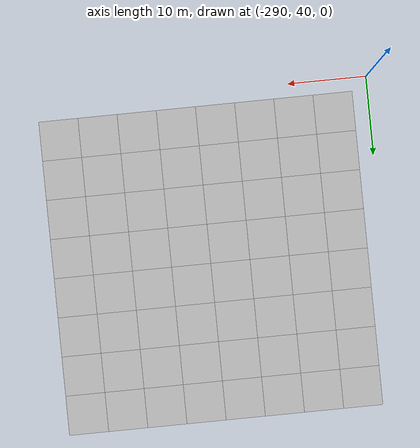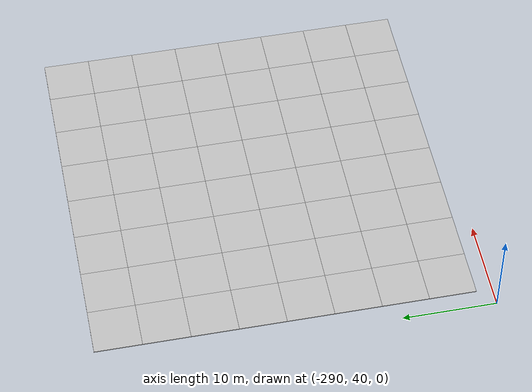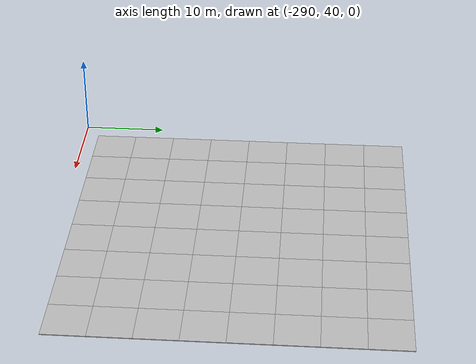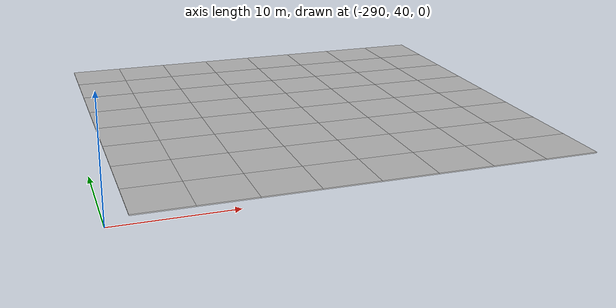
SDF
<sdf version="1.7">
 <world name="default">
  <model name="mud_plane_40x40_28">
   <model name="mud_plane_20x20">
    <model name="mud_plane">
     <static>1</static>
     <link name="link">
      <collision name="collision"><geometry><box><size>10 10 0.1</size></box></geometry></collision>
      <visual name="visual_1">
       <pose>-2.5 2.5 -0.05 0 -0 0</pose>
       <cast_shadows>0</cast_shadows>
       <geometry><box><size>5 5 0.1</size></box></geometry>
       <material>
        <script>
         <uri>model://mud_plane/materials/scripts</uri>
         <uri>model://mud_plane/materials/textures</uri>
         <name>vrc/mud</name>
        </script>
       </material>
      </visual>
      <visual name="visual_2">
       <pose>2.5 2.5 -0.05 0 -0 0</pose>
       <cast_shadows>0</cast_shadows>
       <geometry><box><size>5 5 0.1</size></box></geometry>
       <material>
        <script>
         <uri>model://mud_plane/materials/scripts</uri>
         <uri>model://mud_plane/materials/textures</uri>
         <name>vrc/mud</name>
        </script>
       </material>
      </visual>
      <visual name="visual_3">
       <pose>2.5 -2.5 -0.05 0 -0 0</pose>
       <cast_shadows>0</cast_shadows>
       <geometry><box><size>5 5 0.1</size></box></geometry>
       <material>
        <script>
         <uri>model://mud_plane/materials/scripts</uri>
         <uri>model://mud_plane/materials/textures</uri>
         <name>vrc/mud</name>
        </script>
       </material>
      </visual>
      <visual name="visual_4">
       <pose>-2.5 -2.5 -0.05 0 -0 0</pose>
       <cast_shadows>0</cast_shadows>
       <geometry><box><size>5 5 0.1</size></box></geometry>
       <material>
        <script>
         <uri>model://mud_plane/materials/scripts</uri>
         <uri>model://mud_plane/materials/textures</uri>
         <name>vrc/mud</name>
        </script>
       </material>
      </visual>
     </link>
     <pose>-4.99986 -4.99991 0 0 -0 0</pose>
    </model>
    <model name="mud_plane_0">
     <static>1</static>
     <link name="link">
      <collision name="collision"><geometry><box><size>10 10 0.1</size></box></geometry></collision>
      <visual name="visual_1">
       <pose>-2.5 2.5 -0.05 0 -0 0</pose>
       <cast_shadows>0</cast_shadows>
       <geometry><box><size>5 5 0.1</size></box></geometry>
       <material>
        <script>
         <uri>model://mud_plane/materials/scripts</uri>
         <uri>model://mud_plane/materials/textures</uri>
         <name>vrc/mud</name>
        </script>
       </material>
      </visual>
      <visual name="visual_2">
       <pose>2.5 2.5 -0.05 0 -0 0</pose>
       <cast_shadows>0</cast_shadows>
       <geometry><box><size>5 5 0.1</size></box></geometry>
       <material>
        <script>
         <uri>model://mud_plane/materials/scripts</uri>
         <uri>model://mud_plane/materials/textures</uri>
         <name>vrc/mud</name>
        </script>
       </material>
      </visual>
      <visual name="visual_3">
       <pose>2.5 -2.5 -0.05 0 -0 0</pose>
       <cast_shadows>0</cast_shadows>
       <geometry><box><size>5 5 0.1</size></box></geometry>
       <material>
        <script>
         <uri>model://mud_plane/materials/scripts</uri>
         <uri>model://mud_plane/materials/textures</uri>
         <name>vrc/mud</name>
        </script>
       </material>
      </visual>
      <visual name="visual_4">
       <pose>-2.5 -2.5 -0.05 0 -0 0</pose>
       <cast_shadows>0</cast_shadows>
       <geometry><box><size>5 5 0.1</size></box></geometry>
       <material>
        <script>
         <uri>model://mud_plane/materials/scripts</uri>
         <uri>model://mud_plane/materials/textures</uri>
         <name>vrc/mud</name>
        </script>
       </material>
      </visual>
     </link>
     <pose>-4.99946 4.99954 0 0 -0 0</pose>
    </model>
    <model name="mud_plane_1">
     <static>1</static>
     <link name="link">
      <collision name="collision"><geometry><box><size>10 10 0.1</size></box></geometry></collision>
      <visual name="visual_1">
       <pose>-2.5 2.5 -0.05 0 -0 0</pose>
       <cast_shadows>0</cast_shadows>
       <geometry><box><size>5 5 0.1</size></box></geometry>
       <material>
        <script>
         <uri>model://mud_plane/materials/scripts</uri>
         <uri>model://mud_plane/materials/textures</uri>
         <name>vrc/mud</name>
        </script>
       </material>
      </visual>
      <visual name="visual_2">
       <pose>2.5 2.5 -0.05 0 -0 0</pose>
       <cast_shadows>0</cast_shadows>
       <geometry><box><size>5 5 0.1</size></box></geometry>
       <material>
        <script>
         <uri>model://mud_plane/materials/scripts</uri>
         <uri>model://mud_plane/materials/textures</uri>
         <name>vrc/mud</name>
        </script>
       </material>
      </visual>
      <visual name="visual_3">
       <pose>2.5 -2.5 -0.05 0 -0 0</pose>
       <cast_shadows>0</cast_shadows>
       <geometry><box><size>5 5 0.1</size></box></geometry>
       <material>
        <script>
         <uri>model://mud_plane/materials/scripts</uri>
         <uri>model://mud_plane/materials/textures</uri>
         <name>vrc/mud</name>
        </script>
       </material>
      </visual>
      <visual name="visual_4">
       <pose>-2.5 -2.5 -0.05 0 -0 0</pose>
       <cast_shadows>0</cast_shadows>
       <geometry><box><size>5 5 0.1</size></box></geometry>
       <material>
        <script>
         <uri>model://mud_plane/materials/scripts</uri>
         <uri>model://mud_plane/materials/textures</uri>
         <name>vrc/mud</name>
        </script>
       </material>
      </visual>
     </link>
     <pose>4.99964 -4.99949 0 0 -0 0</pose>
    </model>
    <model name="mud_plane_2">
     <static>1</static>
     <link name="link">
      <collision name="collision"><geometry><box><size>10 10 0.1</size></box></geometry></collision>
      <visual name="visual_1">
       <pose>-2.5 2.5 -0.05 0 -0 0</pose>
       <cast_shadows>0</cast_shadows>
       <geometry><box><size>5 5 0.1</size></box></geometry>
       <material>
        <script>
         <uri>model://mud_plane/materials/scripts</uri>
         <uri>model://mud_plane/materials/textures</uri>
         <name>vrc/mud</name>
        </script>
       </material>
      </visual>
      <visual name="visual_2">
       <pose>2.5 2.5 -0.05 0 -0 0</pose>
       <cast_shadows>0</cast_shadows>
       <geometry><box><size>5 5 0.1</size></box></geometry>
       <material>
        <script>
         <uri>model://mud_plane/materials/scripts</uri>
         <uri>model://mud_plane/materials/textures</uri>
         <name>vrc/mud</name>
        </script>
       </material>
      </visual>
      <visual name="visual_3">
       <pose>2.5 -2.5 -0.05 0 -0 0</pose>
       <cast_shadows>0</cast_shadows>
       <geometry><box><size>5 5 0.1</size></box></geometry>
       <material>
        <script>
         <uri>model://mud_plane/materials/scripts</uri>
         <uri>model://mud_plane/materials/textures</uri>
         <name>vrc/mud</name>
        </script>
       </material>
      </visual>
      <visual name="visual_4">
       <pose>-2.5 -2.5 -0.05 0 -0 0</pose>
       <cast_shadows>0</cast_shadows>
       <geometry><box><size>5 5 0.1</size></box></geometry>
       <material>
        <script>
         <uri>model://mud_plane/materials/scripts</uri>
         <uri>model://mud_plane/materials/textures</uri>
         <name>vrc/mud</name>
        </script>
       </material>
      </visual>
     </link>
     <pose>4.99967 4.99986 0 0 -0 0</pose>
    </model>
    <static>0</static>
    <pose>-9.99895 9.99843 0 0 -0 0</pose>
   </model>
   <model name="mud_plane_20x20_0">
    <model name="mud_plane">
     <static>1</static>
     <link name="link">
      <collision name="collision"><geometry><box><size>10 10 0.1</size></box></geometry></collision>
      <visual name="visual_1">
       <pose>-2.5 2.5 -0.05 0 -0 0</pose>
       <cast_shadows>0</cast_shadows>
       <geometry><box><size>5 5 0.1</size></box></geometry>
       <material>
        <script>
         <uri>model://mud_plane/materials/scripts</uri>
         <uri>model://mud_plane/materials/textures</uri>
         <name>vrc/mud</name>
        </script>
       </material>
      </visual>
      <visual name="visual_2">
       <pose>2.5 2.5 -0.05 0 -0 0</pose>
       <cast_shadows>0</cast_shadows>
       <geometry><box><size>5 5 0.1</size></box></geometry>
       <material>
        <script>
         <uri>model://mud_plane/materials/scripts</uri>
         <uri>model://mud_plane/materials/textures</uri>
         <name>vrc/mud</name>
        </script>
       </material>
      </visual>
      <visual name="visual_3">
       <pose>2.5 -2.5 -0.05 0 -0 0</pose>
       <cast_shadows>0</cast_shadows>
       <geometry><box><size>5 5 0.1</size></box></geometry>
       <material>
        <script>
         <uri>model://mud_plane/materials/scripts</uri>
         <uri>model://mud_plane/materials/textures</uri>
         <name>vrc/mud</name>
        </script>
       </material>
      </visual>
      <visual name="visual_4">
       <pose>-2.5 -2.5 -0.05 0 -0 0</pose>
       <cast_shadows>0</cast_shadows>
       <geometry><box><size>5 5 0.1</size></box></geometry>
       <material>
        <script>
         <uri>model://mud_plane/materials/scripts</uri>
         <uri>model://mud_plane/materials/textures</uri>
         <name>vrc/mud</name>
        </script>
       </material>
      </visual>
     </link>
     <pose>-4.99986 -4.99991 0 0 -0 0</pose>
    </model>
    <model name="mud_plane_0">
     <static>1</static>
     <link name="link">
      <collision name="collision"><geometry><box><size>10 10 0.1</size></box></geometry></collision>
      <visual name="visual_1">
       <pose>-2.5 2.5 -0.05 0 -0 0</pose>
       <cast_shadows>0</cast_shadows>
       <geometry><box><size>5 5 0.1</size></box></geometry>
       <material>
        <script>
         <uri>model://mud_plane/materials/scripts</uri>
         <uri>model://mud_plane/materials/textures</uri>
         <name>vrc/mud</name>
        </script>
       </material>
      </visual>
      <visual name="visual_2">
       <pose>2.5 2.5 -0.05 0 -0 0</pose>
       <cast_shadows>0</cast_shadows>
       <geometry><box><size>5 5 0.1</size></box></geometry>
       <material>
        <script>
         <uri>model://mud_plane/materials/scripts</uri>
         <uri>model://mud_plane/materials/textures</uri>
         <name>vrc/mud</name>
        </script>
       </material>
      </visual>
      <visual name="visual_3">
       <pose>2.5 -2.5 -0.05 0 -0 0</pose>
       <cast_shadows>0</cast_shadows>
       <geometry><box><size>5 5 0.1</size></box></geometry>
       <material>
        <script>
         <uri>model://mud_plane/materials/scripts</uri>
         <uri>model://mud_plane/materials/textures</uri>
         <name>vrc/mud</name>
        </script>
       </material>
      </visual>
      <visual name="visual_4">
       <pose>-2.5 -2.5 -0.05 0 -0 0</pose>
       <cast_shadows>0</cast_shadows>
       <geometry><box><size>5 5 0.1</size></box></geometry>
       <material>
        <script>
         <uri>model://mud_plane/materials/scripts</uri>
         <uri>model://mud_plane/materials/textures</uri>
         <name>vrc/mud</name>
        </script>
       </material>
      </visual>
     </link>
     <pose>-4.99946 4.99954 0 0 -0 0</pose>
    </model>
    <model name="mud_plane_1">
     <static>1</static>
     <link name="link">
      <collision name="collision"><geometry><box><size>10 10 0.1</size></box></geometry></collision>
      <visual name="visual_1">
       <pose>-2.5 2.5 -0.05 0 -0 0</pose>
       <cast_shadows>0</cast_shadows>
       <geometry><box><size>5 5 0.1</size></box></geometry>
       <material>
        <script>
         <uri>model://mud_plane/materials/scripts</uri>
         <uri>model://mud_plane/materials/textures</uri>
         <name>vrc/mud</name>
        </script>
       </material>
      </visual>
      <visual name="visual_2">
       <pose>2.5 2.5 -0.05 0 -0 0</pose>
       <cast_shadows>0</cast_shadows>
       <geometry><box><size>5 5 0.1</size></box></geometry>
       <material>
        <script>
         <uri>model://mud_plane/materials/scripts</uri>
         <uri>model://mud_plane/materials/textures</uri>
         <name>vrc/mud</name>
        </script>
       </material>
      </visual>
      <visual name="visual_3">
       <pose>2.5 -2.5 -0.05 0 -0 0</pose>
       <cast_shadows>0</cast_shadows>
       <geometry><box><size>5 5 0.1</size></box></geometry>
       <material>
        <script>
         <uri>model://mud_plane/materials/scripts</uri>
         <uri>model://mud_plane/materials/textures</uri>
         <name>vrc/mud</name>
        </script>
       </material>
      </visual>
      <visual name="visual_4">
       <pose>-2.5 -2.5 -0.05 0 -0 0</pose>
       <cast_shadows>0</cast_shadows>
       <geometry><box><size>5 5 0.1</size></box></geometry>
       <material>
        <script>
         <uri>model://mud_plane/materials/scripts</uri>
         <uri>model://mud_plane/materials/textures</uri>
         <name>vrc/mud</name>
        </script>
       </material>
      </visual>
     </link>
     <pose>4.99964 -4.99949 0 0 -0 0</pose>
    </model>
    <model name="mud_plane_2">
     <static>1</static>
     <link name="link">
      <collision name="collision"><geometry><box><size>10 10 0.1</size></box></geometry></collision>
      <visual name="visual_1">
       <pose>-2.5 2.5 -0.05 0 -0 0</pose>
       <cast_shadows>0</cast_shadows>
       <geometry><box><size>5 5 0.1</size></box></geometry>
       <material>
        <script>
         <uri>model://mud_plane/materials/scripts</uri>
         <uri>model://mud_plane/materials/textures</uri>
         <name>vrc/mud</name>
        </script>
       </material>
      </visual>
      <visual name="visual_2">
       <pose>2.5 2.5 -0.05 0 -0 0</pose>
       <cast_shadows>0</cast_shadows>
       <geometry><box><size>5 5 0.1</size></box></geometry>
       <material>
        <script>
         <uri>model://mud_plane/materials/scripts</uri>
         <uri>model://mud_plane/materials/textures</uri>
         <name>vrc/mud</name>
        </script>
       </material>
      </visual>
      <visual name="visual_3">
       <pose>2.5 -2.5 -0.05 0 -0 0</pose>
       <cast_shadows>0</cast_shadows>
       <geometry><box><size>5 5 0.1</size></box></geometry>
       <material>
        <script>
         <uri>model://mud_plane/materials/scripts</uri>
         <uri>model://mud_plane/materials/textures</uri>
         <name>vrc/mud</name>
        </script>
       </material>
      </visual>
      <visual name="visual_4">
       <pose>-2.5 -2.5 -0.05 0 -0 0</pose>
       <cast_shadows>0</cast_shadows>
       <geometry><box><size>5 5 0.1</size></box></geometry>
       <material>
        <script>
         <uri>model://mud_plane/materials/scripts</uri>
         <uri>model://mud_plane/materials/textures</uri>
         <name>vrc/mud</name>
        </script>
       </material>
      </visual>
     </link>
     <pose>4.99967 4.99986 0 0 -0 0</pose>
    </model>
    <static>0</static>
    <pose>9.99933 9.9997 0 0 -0 0</pose>
   </model>
   <model name="mud_plane_20x20_1">
    <model name="mud_plane">
     <static>1</static>
     <link name="link">
      <collision name="collision"><geometry><box><size>10 10 0.1</size></box></geometry></collision>
      <visual name="visual_1">
       <pose>-2.5 2.5 -0.05 0 -0 0</pose>
       <cast_shadows>0</cast_shadows>
       <geometry><box><size>5 5 0.1</size></box></geometry>
       <material>
        <script>
         <uri>model://mud_plane/materials/scripts</uri>
         <uri>model://mud_plane/materials/textures</uri>
         <name>vrc/mud</name>
        </script>
       </material>
      </visual>
      <visual name="visual_2">
       <pose>2.5 2.5 -0.05 0 -0 0</pose>
       <cast_shadows>0</cast_shadows>
       <geometry><box><size>5 5 0.1</size></box></geometry>
       <material>
        <script>
         <uri>model://mud_plane/materials/scripts</uri>
         <uri>model://mud_plane/materials/textures</uri>
         <name>vrc/mud</name>
        </script>
       </material>
      </visual>
      <visual name="visual_3">
       <pose>2.5 -2.5 -0.05 0 -0 0</pose>
       <cast_shadows>0</cast_shadows>
       <geometry><box><size>5 5 0.1</size></box></geometry>
       <material>
        <script>
         <uri>model://mud_plane/materials/scripts</uri>
         <uri>model://mud_plane/materials/textures</uri>
         <name>vrc/mud</name>
        </script>
       </material>
      </visual>
      <visual name="visual_4">
       <pose>-2.5 -2.5 -0.05 0 -0 0</pose>
       <cast_shadows>0</cast_shadows>
       <geometry><box><size>5 5 0.1</size></box></geometry>
       <material>
        <script>
         <uri>model://mud_plane/materials/scripts</uri>
         <uri>model://mud_plane/materials/textures</uri>
         <name>vrc/mud</name>
        </script>
       </material>
      </visual>
     </link>
     <pose>-4.99986 -4.99991 0 0 -0 0</pose>
    </model>
    <model name="mud_plane_0">
     <static>1</static>
     <link name="link">
      <collision name="collision"><geometry><box><size>10 10 0.1</size></box></geometry></collision>
      <visual name="visual_1">
       <pose>-2.5 2.5 -0.05 0 -0 0</pose>
       <cast_shadows>0</cast_shadows>
       <geometry><box><size>5 5 0.1</size></box></geometry>
       <material>
        <script>
         <uri>model://mud_plane/materials/scripts</uri>
         <uri>model://mud_plane/materials/textures</uri>
         <name>vrc/mud</name>
        </script>
       </material>
      </visual>
      <visual name="visual_2">
       <pose>2.5 2.5 -0.05 0 -0 0</pose>
       <cast_shadows>0</cast_shadows>
       <geometry><box><size>5 5 0.1</size></box></geometry>
       <material>
        <script>
         <uri>model://mud_plane/materials/scripts</uri>
         <uri>model://mud_plane/materials/textures</uri>
         <name>vrc/mud</name>
        </script>
       </material>
      </visual>
      <visual name="visual_3">
       <pose>2.5 -2.5 -0.05 0 -0 0</pose>
       <cast_shadows>0</cast_shadows>
       <geometry><box><size>5 5 0.1</size></box></geometry>
       <material>
        <script>
         <uri>model://mud_plane/materials/scripts</uri>
         <uri>model://mud_plane/materials/textures</uri>
         <name>vrc/mud</name>
        </script>
       </material>
      </visual>
      <visual name="visual_4">
       <pose>-2.5 -2.5 -0.05 0 -0 0</pose>
       <cast_shadows>0</cast_shadows>
       <geometry><box><size>5 5 0.1</size></box></geometry>
       <material>
        <script>
         <uri>model://mud_plane/materials/scripts</uri>
         <uri>model://mud_plane/materials/textures</uri>
         <name>vrc/mud</name>
        </script>
       </material>
      </visual>
     </link>
     <pose>-4.99946 4.99954 0 0 -0 0</pose>
    </model>
    <model name="mud_plane_1">
     <static>1</static>
     <link name="link">
      <collision name="collision"><geometry><box><size>10 10 0.1</size></box></geometry></collision>
      <visual name="visual_1">
       <pose>-2.5 2.5 -0.05 0 -0 0</pose>
       <cast_shadows>0</cast_shadows>
       <geometry><box><size>5 5 0.1</size></box></geometry>
       <material>
        <script>
         <uri>model://mud_plane/materials/scripts</uri>
         <uri>model://mud_plane/materials/textures</uri>
         <name>vrc/mud</name>
        </script>
       </material>
      </visual>
      <visual name="visual_2">
       <pose>2.5 2.5 -0.05 0 -0 0</pose>
       <cast_shadows>0</cast_shadows>
       <geometry><box><size>5 5 0.1</size></box></geometry>
       <material>
        <script>
         <uri>model://mud_plane/materials/scripts</uri>
         <uri>model://mud_plane/materials/textures</uri>
         <name>vrc/mud</name>
        </script>
       </material>
      </visual>
      <visual name="visual_3">
       <pose>2.5 -2.5 -0.05 0 -0 0</pose>
       <cast_shadows>0</cast_shadows>
       <geometry><box><size>5 5 0.1</size></box></geometry>
       <material>
        <script>
         <uri>model://mud_plane/materials/scripts</uri>
         <uri>model://mud_plane/materials/textures</uri>
         <name>vrc/mud</name>
        </script>
       </material>
      </visual>
      <visual name="visual_4">
       <pose>-2.5 -2.5 -0.05 0 -0 0</pose>
       <cast_shadows>0</cast_shadows>
       <geometry><box><size>5 5 0.1</size></box></geometry>
       <material>
        <script>
         <uri>model://mud_plane/materials/scripts</uri>
         <uri>model://mud_plane/materials/textures</uri>
         <name>vrc/mud</name>
        </script>
       </material>
      </visual>
     </link>
     <pose>4.99964 -4.99949 0 0 -0 0</pose>
    </model>
    <model name="mud_plane_2">
     <static>1</static>
     <link name="link">
      <collision name="collision"><geometry><box><size>10 10 0.1</size></box></geometry></collision>
      <visual name="visual_1">
       <pose>-2.5 2.5 -0.05 0 -0 0</pose>
       <cast_shadows>0</cast_shadows>
       <geometry><box><size>5 5 0.1</size></box></geometry>
       <material>
        <script>
         <uri>model://mud_plane/materials/scripts</uri>
         <uri>model://mud_plane/materials/textures</uri>
         <name>vrc/mud</name>
        </script>
       </material>
      </visual>
      <visual name="visual_2">
       <pose>2.5 2.5 -0.05 0 -0 0</pose>
       <cast_shadows>0</cast_shadows>
       <geometry><box><size>5 5 0.1</size></box></geometry>
       <material>
        <script>
         <uri>model://mud_plane/materials/scripts</uri>
         <uri>model://mud_plane/materials/textures</uri>
         <name>vrc/mud</name>
        </script>
       </material>
      </visual>
      <visual name="visual_3">
       <pose>2.5 -2.5 -0.05 0 -0 0</pose>
       <cast_shadows>0</cast_shadows>
       <geometry><box><size>5 5 0.1</size></box></geometry>
       <material>
        <script>
         <uri>model://mud_plane/materials/scripts</uri>
         <uri>model://mud_plane/materials/textures</uri>
         <name>vrc/mud</name>
        </script>
       </material>
      </visual>
      <visual name="visual_4">
       <pose>-2.5 -2.5 -0.05 0 -0 0</pose>
       <cast_shadows>0</cast_shadows>
       <geometry><box><size>5 5 0.1</size></box></geometry>
       <material>
        <script>
         <uri>model://mud_plane/materials/scripts</uri>
         <uri>model://mud_plane/materials/textures</uri>
         <name>vrc/mud</name>
        </script>
       </material>
      </visual>
     </link>
     <pose>4.99967 4.99986 0 0 -0 0</pose>
    </model>
    <static>0</static>
    <pose>9.9993 -9.99877 0 0 -0 0</pose>
   </model>
   <model name="mud_plane_20x20_2">
    <model name="mud_plane">
     <static>1</static>
     <link name="link">
      <collision name="collision"><geometry><box><size>10 10 0.1</size></box></geometry></collision>
      <visual name="visual_1">
       <pose>-2.5 2.5 -0.05 0 -0 0</pose>
       <cast_shadows>0</cast_shadows>
       <geometry><box><size>5 5 0.1</size></box></geometry>
       <material>
        <script>
         <uri>model://mud_plane/materials/scripts</uri>
         <uri>model://mud_plane/materials/textures</uri>
         <name>vrc/mud</name>
        </script>
       </material>
      </visual>
      <visual name="visual_2">
       <pose>2.5 2.5 -0.05 0 -0 0</pose>
       <cast_shadows>0</cast_shadows>
       <geometry><box><size>5 5 0.1</size></box></geometry>
       <material>
        <script>
         <uri>model://mud_plane/materials/scripts</uri>
         <uri>model://mud_plane/materials/textures</uri>
         <name>vrc/mud</name>
        </script>
       </material>
      </visual>
      <visual name="visual_3">
       <pose>2.5 -2.5 -0.05 0 -0 0</pose>
       <cast_shadows>0</cast_shadows>
       <geometry><box><size>5 5 0.1</size></box></geometry>
       <material>
        <script>
         <uri>model://mud_plane/materials/scripts</uri>
         <uri>model://mud_plane/materials/textures</uri>
         <name>vrc/mud</name>
        </script>
       </material>
      </visual>
      <visual name="visual_4">
       <pose>-2.5 -2.5 -0.05 0 -0 0</pose>
       <cast_shadows>0</cast_shadows>
       <geometry><box><size>5 5 0.1</size></box></geometry>
       <material>
        <script>
         <uri>model://mud_plane/materials/scripts</uri>
         <uri>model://mud_plane/materials/textures</uri>
         <name>vrc/mud</name>
        </script>
       </material>
      </visual>
     </link>
     <pose>-4.99986 -4.99991 0 0 -0 0</pose>
    </model>
    <model name="mud_plane_0">
     <static>1</static>
     <link name="link">
      <collision name="collision"><geometry><box><size>10 10 0.1</size></box></geometry></collision>
      <visual name="visual_1">
       <pose>-2.5 2.5 -0.05 0 -0 0</pose>
       <cast_shadows>0</cast_shadows>
       <geometry><box><size>5 5 0.1</size></box></geometry>
       <material>
        <script>
         <uri>model://mud_plane/materials/scripts</uri>
         <uri>model://mud_plane/materials/textures</uri>
         <name>vrc/mud</name>
        </script>
       </material>
      </visual>
      <visual name="visual_2">
       <pose>2.5 2.5 -0.05 0 -0 0</pose>
       <cast_shadows>0</cast_shadows>
       <geometry><box><size>5 5 0.1</size></box></geometry>
       <material>
        <script>
         <uri>model://mud_plane/materials/scripts</uri>
         <uri>model://mud_plane/materials/textures</uri>
         <name>vrc/mud</name>
        </script>
       </material>
      </visual>
      <visual name="visual_3">
       <pose>2.5 -2.5 -0.05 0 -0 0</pose>
       <cast_shadows>0</cast_shadows>
       <geometry><box><size>5 5 0.1</size></box></geometry>
       <material>
        <script>
         <uri>model://mud_plane/materials/scripts</uri>
         <uri>model://mud_plane/materials/textures</uri>
         <name>vrc/mud</name>
        </script>
       </material>
      </visual>
      <visual name="visual_4">
       <pose>-2.5 -2.5 -0.05 0 -0 0</pose>
       <cast_shadows>0</cast_shadows>
       <geometry><box><size>5 5 0.1</size></box></geometry>
       <material>
        <script>
         <uri>model://mud_plane/materials/scripts</uri>
         <uri>model://mud_plane/materials/textures</uri>
         <name>vrc/mud</name>
        </script>
       </material>
      </visual>
     </link>
     <pose>-4.99946 4.99954 0 0 -0 0</pose>
    </model>
    <model name="mud_plane_1">
     <static>1</static>
     <link name="link">
      <collision name="collision"><geometry><box><size>10 10 0.1</size></box></geometry></collision>
      <visual name="visual_1">
       <pose>-2.5 2.5 -0.05 0 -0 0</pose>
       <cast_shadows>0</cast_shadows>
       <geometry><box><size>5 5 0.1</size></box></geometry>
       <material>
        <script>
         <uri>model://mud_plane/materials/scripts</uri>
         <uri>model://mud_plane/materials/textures</uri>
         <name>vrc/mud</name>
        </script>
       </material>
      </visual>
      <visual name="visual_2">
       <pose>2.5 2.5 -0.05 0 -0 0</pose>
       <cast_shadows>0</cast_shadows>
       <geometry><box><size>5 5 0.1</size></box></geometry>
       <material>
        <script>
         <uri>model://mud_plane/materials/scripts</uri>
         <uri>model://mud_plane/materials/textures</uri>
         <name>vrc/mud</name>
        </script>
       </material>
      </visual>
      <visual name="visual_3">
       <pose>2.5 -2.5 -0.05 0 -0 0</pose>
       <cast_shadows>0</cast_shadows>
       <geometry><box><size>5 5 0.1</size></box></geometry>
       <material>
        <script>
         <uri>model://mud_plane/materials/scripts</uri>
         <uri>model://mud_plane/materials/textures</uri>
         <name>vrc/mud</name>
        </script>
       </material>
      </visual>
      <visual name="visual_4">
       <pose>-2.5 -2.5 -0.05 0 -0 0</pose>
       <cast_shadows>0</cast_shadows>
       <geometry><box><size>5 5 0.1</size></box></geometry>
       <material>
        <script>
         <uri>model://mud_plane/materials/scripts</uri>
         <uri>model://mud_plane/materials/textures</uri>
         <name>vrc/mud</name>
        </script>
       </material>
      </visual>
     </link>
     <pose>4.99964 -4.99949 0 0 -0 0</pose>
    </model>
    <model name="mud_plane_2">
     <static>1</static>
     <link name="link">
      <collision name="collision"><geometry><box><size>10 10 0.1</size></box></geometry></collision>
      <visual name="visual_1">
       <pose>-2.5 2.5 -0.05 0 -0 0</pose>
       <cast_shadows>0</cast_shadows>
       <geometry><box><size>5 5 0.1</size></box></geometry>
       <material>
        <script>
         <uri>model://mud_plane/materials/scripts</uri>
         <uri>model://mud_plane/materials/textures</uri>
         <name>vrc/mud</name>
        </script>
       </material>
      </visual>
      <visual name="visual_2">
       <pose>2.5 2.5 -0.05 0 -0 0</pose>
       <cast_shadows>0</cast_shadows>
       <geometry><box><size>5 5 0.1</size></box></geometry>
       <material>
        <script>
         <uri>model://mud_plane/materials/scripts</uri>
         <uri>model://mud_plane/materials/textures</uri>
         <name>vrc/mud</name>
        </script>
       </material>
      </visual>
      <visual name="visual_3">
       <pose>2.5 -2.5 -0.05 0 -0 0</pose>
       <cast_shadows>0</cast_shadows>
       <geometry><box><size>5 5 0.1</size></box></geometry>
       <material>
        <script>
         <uri>model://mud_plane/materials/scripts</uri>
         <uri>model://mud_plane/materials/textures</uri>
         <name>vrc/mud</name>
        </script>
       </material>
      </visual>
      <visual name="visual_4">
       <pose>-2.5 -2.5 -0.05 0 -0 0</pose>
       <cast_shadows>0</cast_shadows>
       <geometry><box><size>5 5 0.1</size></box></geometry>
       <material>
        <script>
         <uri>model://mud_plane/materials/scripts</uri>
         <uri>model://mud_plane/materials/textures</uri>
         <name>vrc/mud</name>
        </script>
       </material>
      </visual>
     </link>
     <pose>4.99967 4.99986 0 0 -0 0</pose>
    </model>
    <static>0</static>
    <pose>-9.99969 -9.99935 0 0 -0 0</pose>
   </model>
   <static>0</static>
   <pose>-268.06 61.6802 0 0 -0 0</pose>
  </model>
 </world>
</sdf>
